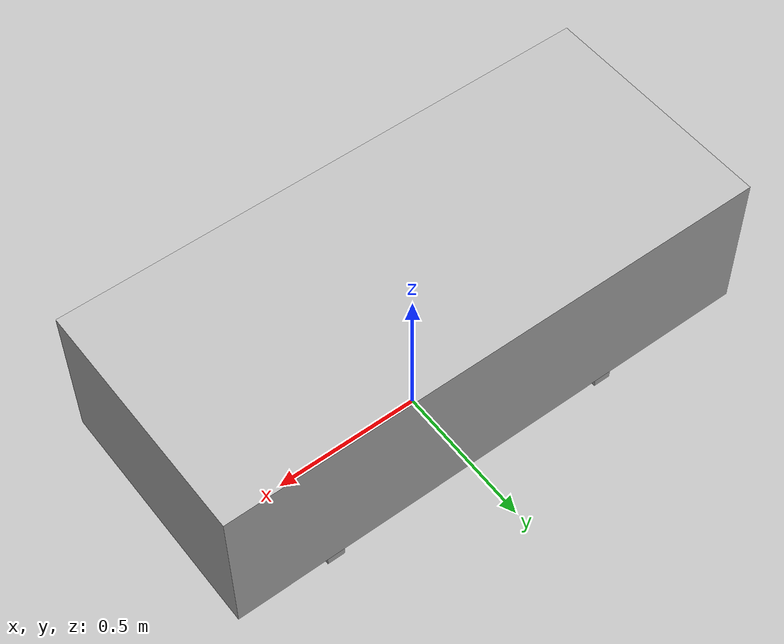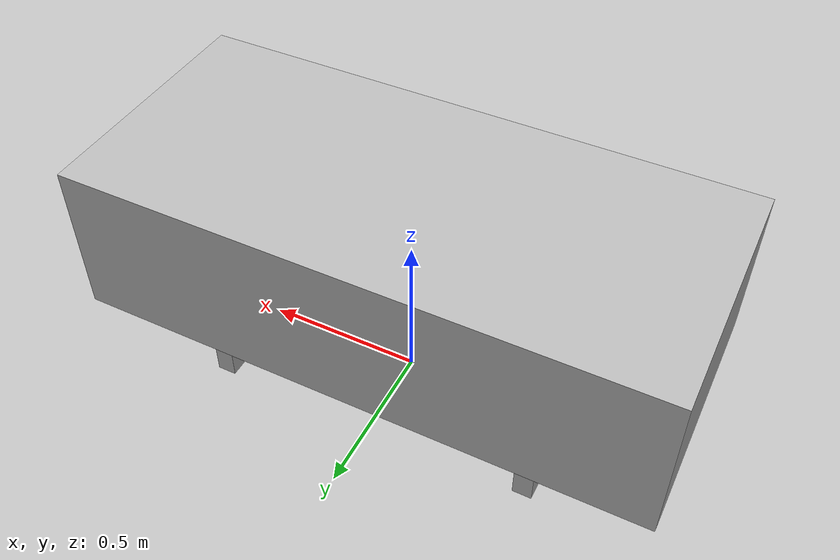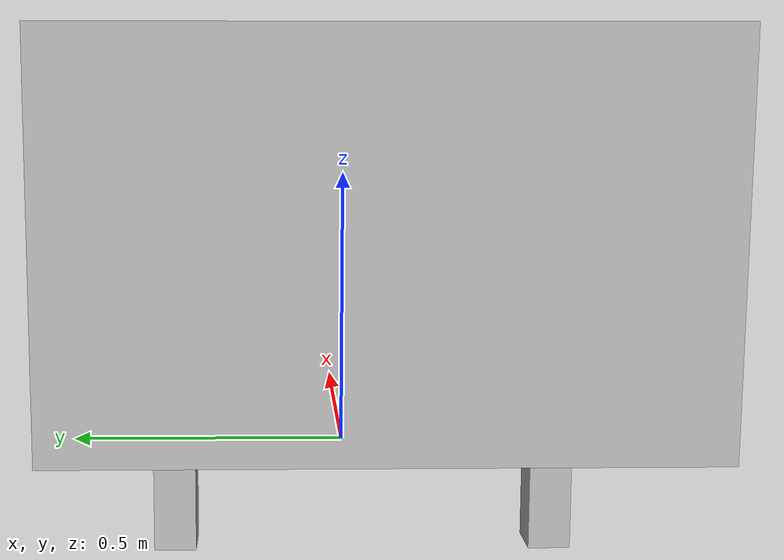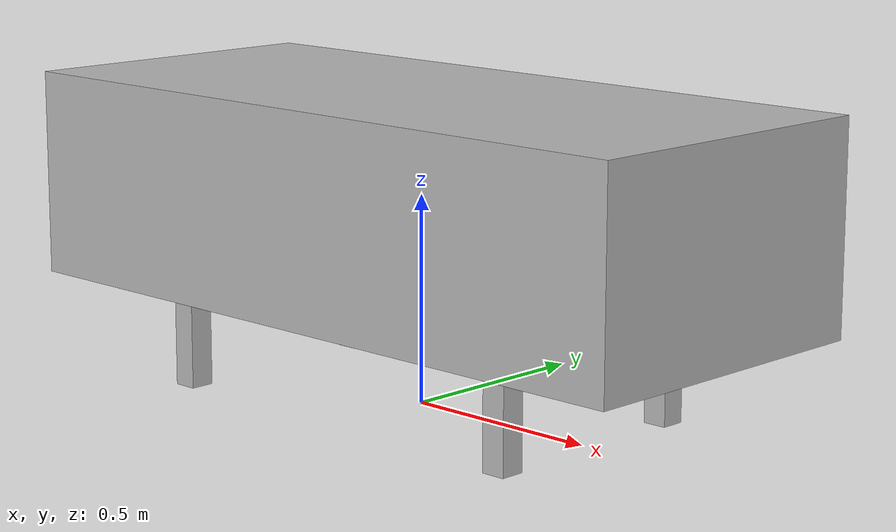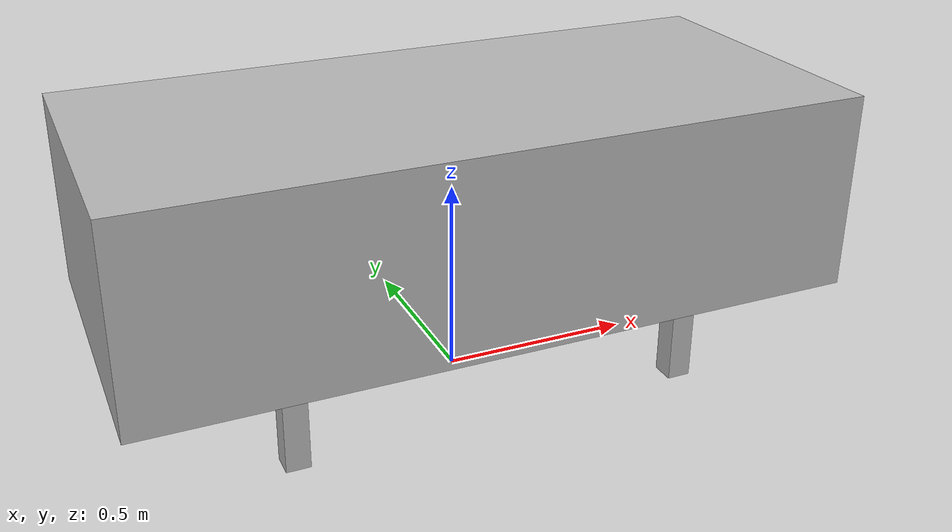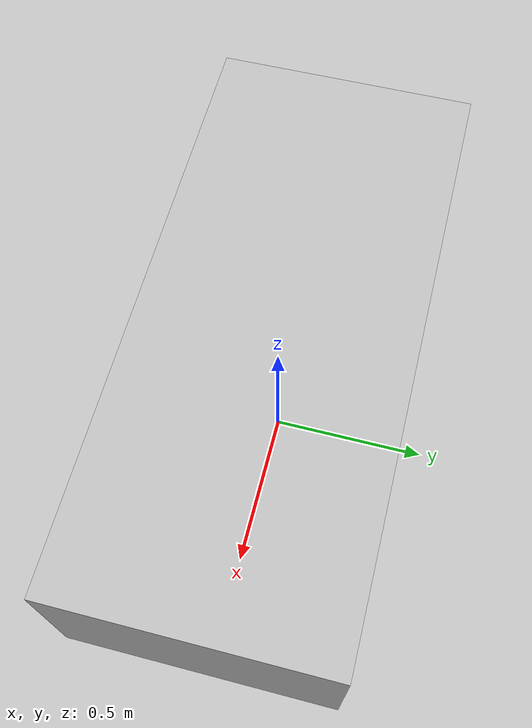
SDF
<?xml version="1.0"?>
<sdf version="1.6">
  <model name="rgo2019/kitchentable">
    <link name="1_link">
      <collision name="1_col">
        <geometry>
          <box>
            <size>1.8 0.8 0.5</size>
          </box>
        </geometry>
      </collision>
      <visual name="1_vis">
        <geometry>
          <box>
            <size>1.8 0.8 0.5</size>
          </box>
        </geometry>
      </visual>
      <pose>0.0 0.0 0.49 0 0 0</pose>
    </link>
    <link name="2_link">
      <collision name="2_col">
        <geometry>
          <box>
            <size>0.06 0.06 0.24</size>
          </box>
        </geometry>
      </collision>
      <visual name="2_vis">
        <geometry>
          <box>
            <size>0.06 0.06 0.24</size>
          </box>
        </geometry>
      </visual>
      <pose>-0.51 -0.27 0.12 0 0 0</pose>
    </link>
    <link name="3_link">
      <collision name="3_col">
        <geometry>
          <box>
            <size>0.06 0.06 0.24</size>
          </box>
        </geometry>
      </collision>
      <visual name="3_vis">
        <geometry>
          <box>
            <size>0.06 0.06 0.24</size>
          </box>
        </geometry>
      </visual>
      <pose>0.51 -0.27 0.12 0 0 0</pose>
    </link>
    <link name="4_link">
      <collision name="4_col">
        <geometry>
          <box>
            <size>0.06 0.06 0.24</size>
          </box>
        </geometry>
      </collision>
      <visual name="4_vis">
        <geometry>
          <box>
            <size>0.06 0.06 0.24</size>
          </box>
        </geometry>
      </visual>
      <pose>-0.51 0.27 0.12 0 0 0</pose>
    </link>
    <link name="5_link">
      <collision name="5_col">
        <geometry>
          <box>
            <size>0.06 0.06 0.24</size>
          </box>
        </geometry>
      </collision>
      <visual name="5_vis">
        <geometry>
          <box>
            <size>0.06 0.06 0.24</size>
          </box>
        </geometry>
      </visual>
      <pose>0.51 0.27 0.12 0 0 0</pose>
    </link>
    <link name="on_top_of">
      <virtual_volume name="on_top_of_vv">
        <geometry>
          <box>
            <size>1.78 0.74 0.25</size>
          </box>
        </geometry>
        <pose>0.0 0.0 0.885 0 0 0</pose>
      </virtual_volume>
    </link>
    <link name="in_front_of">
      <virtual_volume name="in_front_of_vv">
        <geometry>
          <box>
            <size>0.2 0.6 0.01</size>
          </box>
        </geometry>
        <pose>1.4 0.0 0.005 0 0 0</pose>
      </virtual_volume>
    </link>
    <static>true</static>
  </model>
</sdf>
